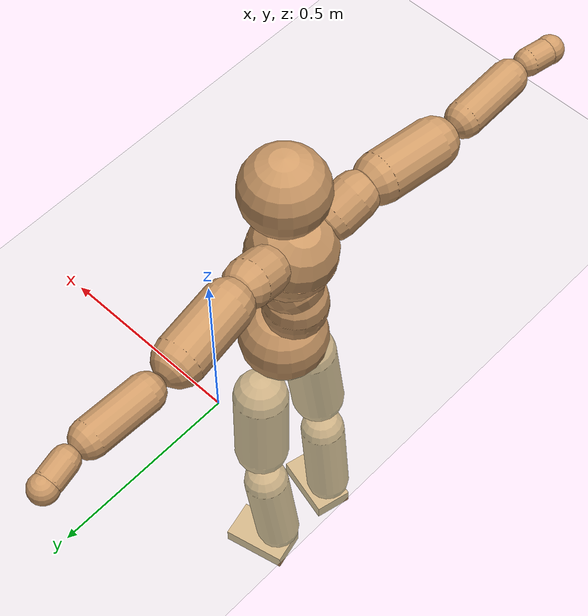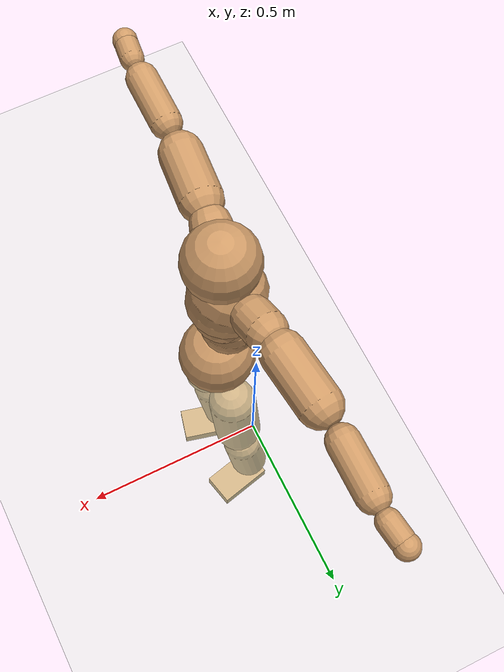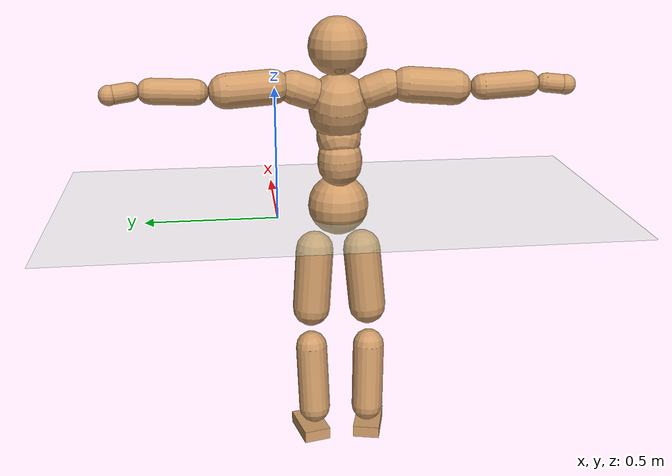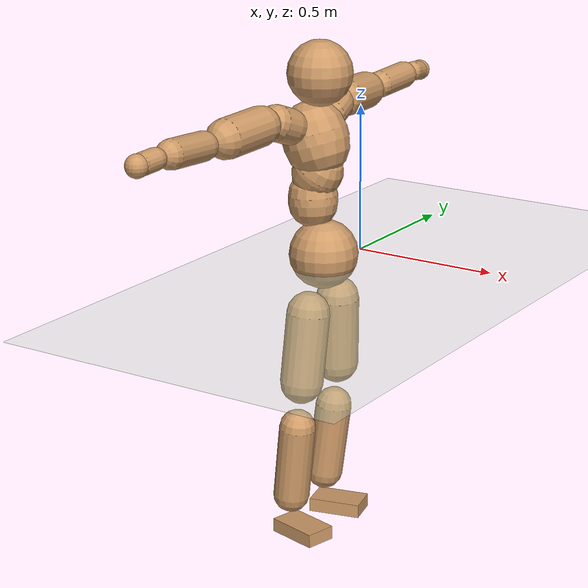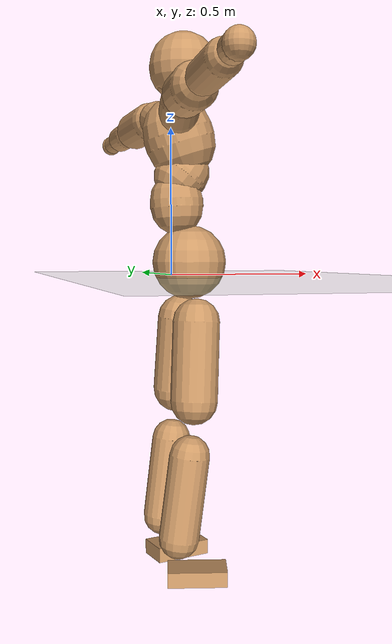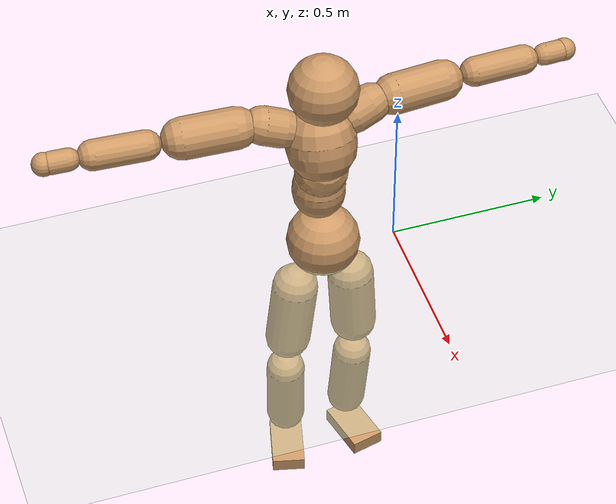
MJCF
<mujoco model="humanoid">
  <compiler coordinate="local"/>
  <default>
    <joint damping="0.0" armature="0.01" stiffness="0.0" limited="true"/>
    <geom conaffinity="1" condim="3" contype="7" margin="0.001" rgba="0.8 0.6 .4 1"/>
  </default>
  <asset>
    <texture type="skybox" builtin="gradient" rgb1=".4 .5 .6" rgb2="0 0 0" width="100" height="100"/>
    <texture builtin="flat" height="1278" mark="cross" markrgb="1 1 1" name="texgeom" random="0.01" rgb1="0.8 0.6 0.4" rgb2="0.8 0.6 0.4" type="cube" width="127"/>
    <texture builtin="checker" height="100" name="texplane" rgb1="0 0 0" rgb2="0.8 0.8 0.8" type="2d" width="100"/>
    <material name="MatPlane" reflectance="0.5" shininess="1" specular="1" texrepeat="60 60" texture="texplane"/>
    <material name="geom" texture="texgeom" texuniform="true"/>
  </asset>
  <worldbody>
    <light cutoff="100" diffuse="1 1 1" dir="-0 0 -1.3" directional="true" exponent="1" pos="0 0 1.3" specular=".1 .1 .1"/>
    <geom conaffinity="1" condim="3" name="floor" pos="0 0 0" rgba="0.8 0.9 0.8 1" size="100 100 .2" type="plane" material="MatPlane"/>
    <body name="Pelvis" pos="0.0015 -0.2333 0.046">
      <freejoint name="Pelvis"/>
      <geom type="sphere" contype="1" conaffinity="1" density="500" size="0.1158" pos="0.0000 0.0000 0.0000" name="Pelvis"/>
      <body name="L_Hip" pos="-0.0007 0.0876 -0.1017">
        <joint name="L_Hip_x" type="hinge" pos="0 0 0" axis="1 0 0" stiffness="800" damping="80" armature="0.02" range="-180.0000 180.0000"/>
        <joint name="L_Hip_y" type="hinge" pos="0 0 0" axis="0 1 0" stiffness="800" damping="80" armature="0.02" range="-180.0000 180.0000"/>
        <joint name="L_Hip_z" type="hinge" pos="0 0 0" axis="0 0 1" stiffness="800" damping="80" armature="0.02" range="-180.0000 180.0000"/>
        <geom type="capsule" contype="1" conaffinity="1" density="500" fromto="-0.0041 0.0055 -0.0791 -0.0164 0.0220 -0.3165" size="0.0733" name="L_Hip"/>
        <body name="L_Knee" pos="-0.0205 0.0275 -0.3956">
          <joint name="L_Knee_x" type="hinge" pos="0 0 0" axis="1 0 0" stiffness="800" damping="80" armature="0.02" range="-180.0000 180.0000"/>
          <joint name="L_Knee_y" type="hinge" pos="0 0 0" axis="0 1 0" stiffness="800" damping="80" armature="0.02" range="-180.0000 180.0000"/>
          <joint name="L_Knee_z" type="hinge" pos="0 0 0" axis="0 0 1" stiffness="800" damping="80" armature="0.02" range="-180.0000 180.0000"/>
          <geom type="capsule" contype="1" conaffinity="1" density="500" fromto="-0.0109 -0.0024 -0.0852 -0.0435 -0.0095 -0.3406" size="0.0621" name="L_Knee"/>
          <body name="L_Ankle" pos="-0.0543 -0.0119 -0.4258">
            <joint name="L_Ankle_x" type="hinge" pos="0 0 0" axis="1 0 0" stiffness="800" damping="80" armature="0.02" range="-180.0000 180.0000"/>
            <joint name="L_Ankle_y" type="hinge" pos="0 0 0" axis="0 1 0" stiffness="800" damping="80" armature="0.02" range="-180.0000 180.0000"/>
            <joint name="L_Ankle_z" type="hinge" pos="0 0 0" axis="0 0 1" stiffness="800" damping="80" armature="0.02" range="-180.0000 180.0000"/>
            <geom type="box" contype="1" conaffinity="1" density="500" pos="0.0621 0.0144 -0.0308" size="0.0896 0.0531 0.0234" quat="0.9935 0.0000 0.0000 0.1137" name="L_Ankle"/>
            <body name="L_Toe" pos="0.1242 0.0288 -0.0615">
              <joint name="L_Toe_x" type="hinge" pos="0 0 0" axis="1 0 0" stiffness="500" damping="50" armature="0.02" range="-180.0000 180.0000"/>
              <joint name="L_Toe_y" type="hinge" pos="0 0 0" axis="0 1 0" stiffness="500" damping="50" armature="0.02" range="-180.0000 180.0000"/>
              <joint name="L_Toe_z" type="hinge" pos="0 0 0" axis="0 0 1" stiffness="500" damping="50" armature="0.02" range="-180.0000 180.0000"/>
              <geom type="box" contype="1" conaffinity="1" density="500" pos="0.0000 0.0000 0.0314" size="0.001 0.0026 0.0012" quat="0.9928 0.0000 0.0000 0.1195" name="L_Toe"/>
            </body>
          </body>
        </body>
      </body>
      <body name="R_Hip" pos="0.0028 -0.0842 -0.1022">
        <joint name="R_Hip_x" type="hinge" pos="0 0 0" axis="1 0 0" stiffness="800" damping="80" armature="0.02" range="-180.0000 180.0000"/>
        <joint name="R_Hip_y" type="hinge" pos="0 0 0" axis="0 1 0" stiffness="800" damping="80" armature="0.02" range="-180.0000 180.0000"/>
        <joint name="R_Hip_z" type="hinge" pos="0 0 0" axis="0 0 1" stiffness="800" damping="80" armature="0.02" range="-180.0000 180.0000"/>
        <geom type="capsule" contype="1" conaffinity="1" density="500" fromto="-0.0045 -0.0072 -0.0800 -0.0179 -0.0288 -0.3200" size="0.0724" name="R_Hip"/>
        <body name="R_Knee" pos="-0.0224 -0.036 -0.4">
          <joint name="R_Knee_x" type="hinge" pos="0 0 0" axis="1 0 0" stiffness="800" damping="80" armature="0.02" range="-180.0000 180.0000"/>
          <joint name="R_Knee_y" type="hinge" pos="0 0 0" axis="0 1 0" stiffness="800" damping="80" armature="0.02" range="-180.0000 180.0000"/>
          <joint name="R_Knee_z" type="hinge" pos="0 0 0" axis="0 0 1" stiffness="800" damping="80" armature="0.02" range="-180.0000 180.0000"/>
          <geom type="capsule" contype="1" conaffinity="1" density="500" fromto="-0.0107 0.0028 -0.0855 -0.0426 0.0114 -0.3420" size="0.062" name="R_Knee"/>
          <body name="R_Ankle" pos="-0.0533 0.0142 -0.4275">
            <joint name="R_Ankle_x" type="hinge" pos="0 0 0" axis="1 0 0" stiffness="800" damping="80" armature="0.02" range="-180.0000 180.0000"/>
            <joint name="R_Ankle_y" type="hinge" pos="0 0 0" axis="0 1 0" stiffness="800" damping="80" armature="0.02" range="-180.0000 180.0000"/>
            <joint name="R_Ankle_z" type="hinge" pos="0 0 0" axis="0 0 1" stiffness="800" damping="80" armature="0.02" range="-180.0000 180.0000"/>
            <geom type="box" contype="1" conaffinity="1" density="500" pos="0.0647 -0.0162 -0.0264" size="0.0909 0.0529 0.0232" quat="0.9925 0.0000 0.0000 -0.1226" name="R_Ankle"/>
            <body name="R_Toe" pos="0.1293 -0.0325 -0.0529">
              <joint name="R_Toe_x" type="hinge" pos="0 0 0" axis="1 0 0" stiffness="500" damping="50" armature="0.02" range="-180.0000 180.0000"/>
              <joint name="R_Toe_y" type="hinge" pos="0 0 0" axis="0 1 0" stiffness="500" damping="50" armature="0.02" range="-180.0000 180.0000"/>
              <joint name="R_Toe_z" type="hinge" pos="0 0 0" axis="0 0 1" stiffness="500" damping="50" armature="0.02" range="-180.0000 180.0000"/>
              <geom type="box" contype="1" conaffinity="1" density="500" pos="0.0000 0.0000 0.0287" size="0.001 0.0026 0.0013" quat="0.9935 0.0000 0.0000 -0.1137" name="R_Toe"/>
            </body>
          </body>
        </body>
      </body>
      <body name="Torso" pos="-0.037 -0.0027 0.1182">
        <joint name="Torso_x" type="hinge" pos="0 0 0" axis="1 0 0" stiffness="1000" damping="100" armature="0.02" range="-180.0000 180.0000"/>
        <joint name="Torso_y" type="hinge" pos="0 0 0" axis="0 1 0" stiffness="1000" damping="100" armature="0.02" range="-180.0000 180.0000"/>
        <joint name="Torso_z" type="hinge" pos="0 0 0" axis="0 0 1" stiffness="1000" damping="100" armature="0.02" range="-180.0000 180.0000"/>
        <geom type="capsule" contype="1" conaffinity="1" density="500" fromto="-0.0038 0.0017 0.0769 -0.0025 0.0011 0.0512" size="0.082956" name="Torso"/>
        <body name="Spine" pos="-0.0063 0.0029 0.1281">
          <joint name="Spine_x" type="hinge" pos="0 0 0" axis="1 0 0" stiffness="1000" damping="100" armature="0.02" range="-180.0000 180.0000"/>
          <joint name="Spine_y" type="hinge" pos="0 0 0" axis="0 1 0" stiffness="1000" damping="100" armature="0.02" range="-180.0000 180.0000"/>
          <joint name="Spine_z" type="hinge" pos="0 0 0" axis="0 0 1" stiffness="1000" damping="100" armature="0.02" range="-180.0000 180.0000"/>
          <geom type="capsule" contype="1" conaffinity="1" density="500" fromto="0.0237 0.0009 0.0324 0.0158 0.0006 0.0216" size="0.083235" name="Spine"/>
          <body name="Chest" pos="0.0395 0.0015 0.054">
            <joint name="Chest_x" type="hinge" pos="0 0 0" axis="1 0 0" stiffness="1000" damping="100" armature="0.02" range="-180.0000 180.0000"/>
            <joint name="Chest_y" type="hinge" pos="0 0 0" axis="0 1 0" stiffness="1000" damping="100" armature="0.02" range="-180.0000 180.0000"/>
            <joint name="Chest_z" type="hinge" pos="0 0 0" axis="0 0 1" stiffness="1000" damping="100" armature="0.02" range="-180.0000 180.0000"/>
            <geom type="capsule" contype="1" conaffinity="1" density="500" fromto="-0.0333 0.0001 0.1028 -0.0222 0.0000 0.0685" size="0.109833" name="Chest"/>
            <body name="Neck" pos="-0.066 0.001 0.2408">
              <joint name="Neck_x" type="hinge" pos="0 0 0" axis="1 0 0" stiffness="500" damping="50" armature="0.02" range="-180.0000 180.0000"/>
              <joint name="Neck_y" type="hinge" pos="0 0 0" axis="0 1 0" stiffness="500" damping="50" armature="0.02" range="-180.0000 180.0000"/>
              <joint name="Neck_z" type="hinge" pos="0 0 0" axis="0 0 1" stiffness="500" damping="50" armature="0.02" range="-180.0000 180.0000"/>
              <geom type="capsule" contype="1" conaffinity="1" density="500" fromto="0.0109 0.0002 0.0124 0.0436 0.0007 0.0495" size="0.043617" name="Neck"/>
              <body name="Head" pos="0.0545 0.0009 0.0619">
                <joint name="Head_x" type="hinge" pos="0 0 0" axis="1 0 0" stiffness="500" damping="50" armature="0.02" range="-180.0000 180.0000"/>
                <joint name="Head_y" type="hinge" pos="0 0 0" axis="0 1 0" stiffness="500" damping="50" armature="0.02" range="-180.0000 180.0000"/>
                <joint name="Head_z" type="hinge" pos="0 0 0" axis="0 0 1" stiffness="500" damping="50" armature="0.02" range="-180.0000 180.0000"/>
                <geom type="sphere" contype="1" conaffinity="1" density="500" size="0.1084" pos="0.0000 0.0000 0.0000" name="Head"/>
              </body>
            </body>
            <body name="L_Thorax" pos="-0.047 0.0908 0.1378">
              <joint name="L_Thorax_x" type="hinge" pos="0 0 0" axis="1 0 0" stiffness="500" damping="50" armature="0.02" range="-180.0000 180.0000"/>
              <joint name="L_Thorax_y" type="hinge" pos="0 0 0" axis="0 1 0" stiffness="500" damping="50" armature="0.02" range="-180.0000 180.0000"/>
              <joint name="L_Thorax_z" type="hinge" pos="0 0 0" axis="0 0 1" stiffness="500" damping="50" armature="0.02" range="-180.0000 180.0000"/>
              <geom type="capsule" contype="1" conaffinity="1" density="500" fromto="-0.0026 0.0193 0.0072 -0.0104 0.0771 0.0289" size="0.0608" name="L_Thorax"/>
              <body name="L_Shoulder" pos="-0.013 0.0964 0.0361">
                <joint name="L_Shoulder_x" type="hinge" pos="0 0 0" axis="1 0 0" stiffness="500" damping="50" armature="0.02" range="-720.0000 720.0000"/>
                <joint name="L_Shoulder_y" type="hinge" pos="0 0 0" axis="0 1 0" stiffness="500" damping="50" armature="0.02" range="-720.0000 720.0000"/>
                <joint name="L_Shoulder_z" type="hinge" pos="0 0 0" axis="0 0 1" stiffness="500" damping="50" armature="0.02" range="-720.0000 720.0000"/>
                <geom type="capsule" contype="1" conaffinity="1" density="500" fromto="-0.0069 0.0550 -0.0024 -0.0275 0.2200 -0.0097" size="0.0637" name="L_Shoulder"/>
                <body name="L_Elbow" pos="-0.0344 0.2751 -0.0121">
                  <joint name="L_Elbow_x" type="hinge" pos="0 0 0" axis="1 0 0" stiffness="500" damping="50" armature="0.02" range="-720.0000 720.0000"/>
                  <joint name="L_Elbow_y" type="hinge" pos="0 0 0" axis="0 1 0" stiffness="500" damping="50" armature="0.02" range="-720.0000 720.0000"/>
                  <joint name="L_Elbow_z" type="hinge" pos="0 0 0" axis="0 0 1" stiffness="500" damping="50" armature="0.02" range="-720.0000 720.0000"/>
                  <geom type="capsule" contype="1" conaffinity="1" density="500" fromto="0.0006 0.0518 0.0024 0.0025 0.2070 0.0095" size="0.0469" name="L_Elbow"/>
                  <body name="L_Wrist" pos="0.0032 0.2588 0.0119">
                    <joint name="L_Wrist_x" type="hinge" pos="0 0 0" axis="1 0 0" stiffness="300" damping="30" armature="0.02" range="-180.0000 180.0000"/>
                    <joint name="L_Wrist_y" type="hinge" pos="0 0 0" axis="0 1 0" stiffness="300" damping="30" armature="0.02" range="-180.0000 180.0000"/>
                    <joint name="L_Wrist_z" type="hinge" pos="0 0 0" axis="0 0 1" stiffness="300" damping="30" armature="0.02" range="-180.0000 180.0000"/>
                    <geom type="capsule" contype="1" conaffinity="1" density="500" fromto="-0.0029 0.0179 -0.0021 -0.0116 0.0717 -0.0085" size="0.0344" name="L_Wrist"/>
                    <body name="L_Hand" pos="-0.0146 0.0896 -0.0106">
                      <joint name="L_Hand_x" type="hinge" pos="0 0 0" axis="1 0 0" stiffness="300" damping="30" armature="0.02" range="-180.0000 180.0000"/>
                      <joint name="L_Hand_y" type="hinge" pos="0 0 0" axis="0 1 0" stiffness="300" damping="30" armature="0.02" range="-180.0000 180.0000"/>
                      <joint name="L_Hand_z" type="hinge" pos="0 0 0" axis="0 0 1" stiffness="300" damping="30" armature="0.02" range="-180.0000 180.0000"/>
                      <geom type="sphere" contype="1" conaffinity="1" density="500" size="0.0362" pos="0.0000 0.0000 0.0000" name="L_Hand"/>
                    </body>
                  </body>
                </body>
              </body>
            </body>
            <body name="R_Thorax" pos="-0.0536 -0.0915 0.1353">
              <joint name="R_Thorax_x" type="hinge" pos="0 0 0" axis="1 0 0" stiffness="500" damping="50" armature="0.02" range="-180.0000 180.0000"/>
              <joint name="R_Thorax_y" type="hinge" pos="0 0 0" axis="0 1 0" stiffness="500" damping="50" armature="0.02" range="-180.0000 180.0000"/>
              <joint name="R_Thorax_z" type="hinge" pos="0 0 0" axis="0 0 1" stiffness="500" damping="50" armature="0.02" range="-180.0000 180.0000"/>
              <geom type="capsule" contype="1" conaffinity="1" density="500" fromto="-0.0027 -0.0202 0.0076 -0.0107 -0.0809 0.0303" size="0.0601" name="R_Thorax"/>
              <body name="R_Shoulder" pos="-0.0134 -0.1012 0.0379">
                <joint name="R_Shoulder_x" type="hinge" pos="0 0 0" axis="1 0 0" stiffness="500" damping="50" armature="0.02" range="-720.0000 720.0000"/>
                <joint name="R_Shoulder_y" type="hinge" pos="0 0 0" axis="0 1 0" stiffness="500" damping="50" armature="0.02" range="-720.0000 720.0000"/>
                <joint name="R_Shoulder_z" type="hinge" pos="0 0 0" axis="0 0 1" stiffness="500" damping="50" armature="0.02" range="-720.0000 720.0000"/>
                <geom type="capsule" contype="1" conaffinity="1" density="500" fromto="-0.0057 -0.0548 -0.0034 -0.0226 -0.2191 -0.0136" size="0.0654" name="R_Shoulder"/>
                <body name="R_Elbow" pos="-0.0283 -0.2739 -0.017">
                  <joint name="R_Elbow_x" type="hinge" pos="0 0 0" axis="1 0 0" stiffness="500" damping="50" armature="0.02" range="-720.0000 720.0000"/>
                  <joint name="R_Elbow_y" type="hinge" pos="0 0 0" axis="0 1 0" stiffness="500" damping="50" armature="0.02" range="-720.0000 720.0000"/>
                  <joint name="R_Elbow_z" type="hinge" pos="0 0 0" axis="0 0 1" stiffness="500" damping="50" armature="0.02" range="-720.0000 720.0000"/>
                  <geom type="capsule" contype="1" conaffinity="1" density="500" fromto="0.0002 -0.0538 0.0029 0.0009 -0.2151 0.0116" size="0.0476" name="R_Elbow"/>
                  <body name="R_Wrist" pos="0.0011 -0.2688 0.0145">
                    <joint name="R_Wrist_x" type="hinge" pos="0 0 0" axis="1 0 0" stiffness="300" damping="30" armature="0.02" range="-180.0000 180.0000"/>
                    <joint name="R_Wrist_y" type="hinge" pos="0 0 0" axis="0 1 0" stiffness="300" damping="30" armature="0.02" range="-180.0000 180.0000"/>
                    <joint name="R_Wrist_z" type="hinge" pos="0 0 0" axis="0 0 1" stiffness="300" damping="30" armature="0.02" range="-180.0000 180.0000"/>
                    <geom type="capsule" contype="1" conaffinity="1" density="500" fromto="-0.0024 -0.0183 -0.0016 -0.0097 -0.0732 -0.0065" size="0.0355" name="R_Wrist"/>
                    <body name="R_Hand" pos="-0.0121 -0.0915 -0.0082">
                      <joint name="R_Hand_x" type="hinge" pos="0 0 0" axis="1 0 0" stiffness="300" damping="30" armature="0.02" range="-180.0000 180.0000"/>
                      <joint name="R_Hand_y" type="hinge" pos="0 0 0" axis="0 1 0" stiffness="300" damping="30" armature="0.02" range="-180.0000 180.0000"/>
                      <joint name="R_Hand_z" type="hinge" pos="0 0 0" axis="0 0 1" stiffness="300" damping="30" armature="0.02" range="-180.0000 180.0000"/>
                      <geom type="sphere" contype="1" conaffinity="1" density="500" size="0.0369" pos="0.0000 0.0000 0.0000" name="R_Hand"/>
                    </body>
                  </body>
                </body>
              </body>
            </body>
          </body>
        </body>
      </body>
    </body>
  </worldbody>
  <actuator>
    <motor name="L_Hip_x" joint="L_Hip_x" gear="500"/>
    <motor name="L_Hip_y" joint="L_Hip_y" gear="500"/>
    <motor name="L_Hip_z" joint="L_Hip_z" gear="500"/>
    <motor name="L_Knee_x" joint="L_Knee_x" gear="500"/>
    <motor name="L_Knee_y" joint="L_Knee_y" gear="500"/>
    <motor name="L_Knee_z" joint="L_Knee_z" gear="500"/>
    <motor name="L_Ankle_x" joint="L_Ankle_x" gear="500"/>
    <motor name="L_Ankle_y" joint="L_Ankle_y" gear="500"/>
    <motor name="L_Ankle_z" joint="L_Ankle_z" gear="500"/>
    <motor name="L_Toe_x" joint="L_Toe_x" gear="500"/>
    <motor name="L_Toe_y" joint="L_Toe_y" gear="500"/>
    <motor name="L_Toe_z" joint="L_Toe_z" gear="500"/>
    <motor name="R_Hip_x" joint="R_Hip_x" gear="500"/>
    <motor name="R_Hip_y" joint="R_Hip_y" gear="500"/>
    <motor name="R_Hip_z" joint="R_Hip_z" gear="500"/>
    <motor name="R_Knee_x" joint="R_Knee_x" gear="500"/>
    <motor name="R_Knee_y" joint="R_Knee_y" gear="500"/>
    <motor name="R_Knee_z" joint="R_Knee_z" gear="500"/>
    <motor name="R_Ankle_x" joint="R_Ankle_x" gear="500"/>
    <motor name="R_Ankle_y" joint="R_Ankle_y" gear="500"/>
    <motor name="R_Ankle_z" joint="R_Ankle_z" gear="500"/>
    <motor name="R_Toe_x" joint="R_Toe_x" gear="500"/>
    <motor name="R_Toe_y" joint="R_Toe_y" gear="500"/>
    <motor name="R_Toe_z" joint="R_Toe_z" gear="500"/>
    <motor name="Torso_x" joint="Torso_x" gear="500"/>
    <motor name="Torso_y" joint="Torso_y" gear="500"/>
    <motor name="Torso_z" joint="Torso_z" gear="500"/>
    <motor name="Spine_x" joint="Spine_x" gear="500"/>
    <motor name="Spine_y" joint="Spine_y" gear="500"/>
    <motor name="Spine_z" joint="Spine_z" gear="500"/>
    <motor name="Chest_x" joint="Chest_x" gear="500"/>
    <motor name="Chest_y" joint="Chest_y" gear="500"/>
    <motor name="Chest_z" joint="Chest_z" gear="500"/>
    <motor name="Neck_x" joint="Neck_x" gear="500"/>
    <motor name="Neck_y" joint="Neck_y" gear="500"/>
    <motor name="Neck_z" joint="Neck_z" gear="500"/>
    <motor name="Head_x" joint="Head_x" gear="500"/>
    <motor name="Head_y" joint="Head_y" gear="500"/>
    <motor name="Head_z" joint="Head_z" gear="500"/>
    <motor name="L_Thorax_x" joint="L_Thorax_x" gear="500"/>
    <motor name="L_Thorax_y" joint="L_Thorax_y" gear="500"/>
    <motor name="L_Thorax_z" joint="L_Thorax_z" gear="500"/>
    <motor name="L_Shoulder_x" joint="L_Shoulder_x" gear="500"/>
    <motor name="L_Shoulder_y" joint="L_Shoulder_y" gear="500"/>
    <motor name="L_Shoulder_z" joint="L_Shoulder_z" gear="500"/>
    <motor name="L_Elbow_x" joint="L_Elbow_x" gear="500"/>
    <motor name="L_Elbow_y" joint="L_Elbow_y" gear="500"/>
    <motor name="L_Elbow_z" joint="L_Elbow_z" gear="500"/>
    <motor name="L_Wrist_x" joint="L_Wrist_x" gear="500"/>
    <motor name="L_Wrist_y" joint="L_Wrist_y" gear="500"/>
    <motor name="L_Wrist_z" joint="L_Wrist_z" gear="500"/>
    <motor name="L_Hand_x" joint="L_Hand_x" gear="500"/>
    <motor name="L_Hand_y" joint="L_Hand_y" gear="500"/>
    <motor name="L_Hand_z" joint="L_Hand_z" gear="500"/>
    <motor name="R_Thorax_x" joint="R_Thorax_x" gear="500"/>
    <motor name="R_Thorax_y" joint="R_Thorax_y" gear="500"/>
    <motor name="R_Thorax_z" joint="R_Thorax_z" gear="500"/>
    <motor name="R_Shoulder_x" joint="R_Shoulder_x" gear="500"/>
    <motor name="R_Shoulder_y" joint="R_Shoulder_y" gear="500"/>
    <motor name="R_Shoulder_z" joint="R_Shoulder_z" gear="500"/>
    <motor name="R_Elbow_x" joint="R_Elbow_x" gear="500"/>
    <motor name="R_Elbow_y" joint="R_Elbow_y" gear="500"/>
    <motor name="R_Elbow_z" joint="R_Elbow_z" gear="500"/>
    <motor name="R_Wrist_x" joint="R_Wrist_x" gear="500"/>
    <motor name="R_Wrist_y" joint="R_Wrist_y" gear="500"/>
    <motor name="R_Wrist_z" joint="R_Wrist_z" gear="500"/>
    <motor name="R_Hand_x" joint="R_Hand_x" gear="500"/>
    <motor name="R_Hand_y" joint="R_Hand_y" gear="500"/>
    <motor name="R_Hand_z" joint="R_Hand_z" gear="500"/>
  </actuator>
  <contact>
    <exclude body1="Torso" body2="Chest"/>
    <exclude body1="Head" body2="Chest"/>
    <exclude body1="R_Knee" body2="R_Toe"/>
    <exclude body1="R_Knee" body2="L_Ankle"/>
    <exclude body1="R_Knee" body2="L_Toe"/>
    <exclude body1="L_Knee" body2="L_Toe"/>
    <exclude body1="L_Knee" body2="R_Ankle"/>
    <exclude body1="L_Knee" body2="R_Toe"/>
    <exclude body1="L_Shoulder" body2="Chest"/>
    <exclude body1="R_Shoulder" body2="Chest"/>
  </contact>
  <sensor/>
  <size njmax="700" nconmax="700"/>
</mujoco>
